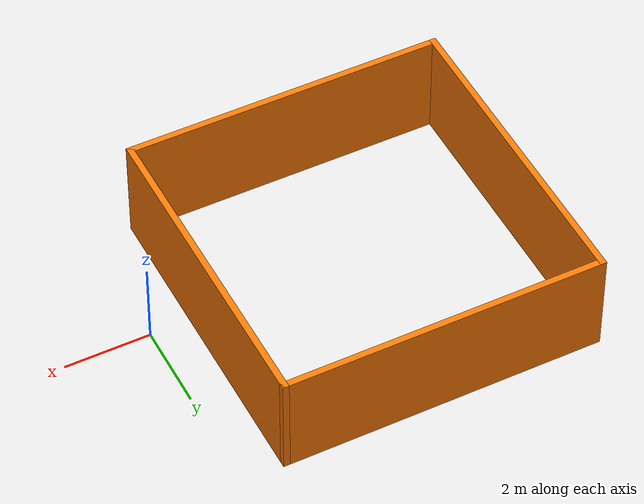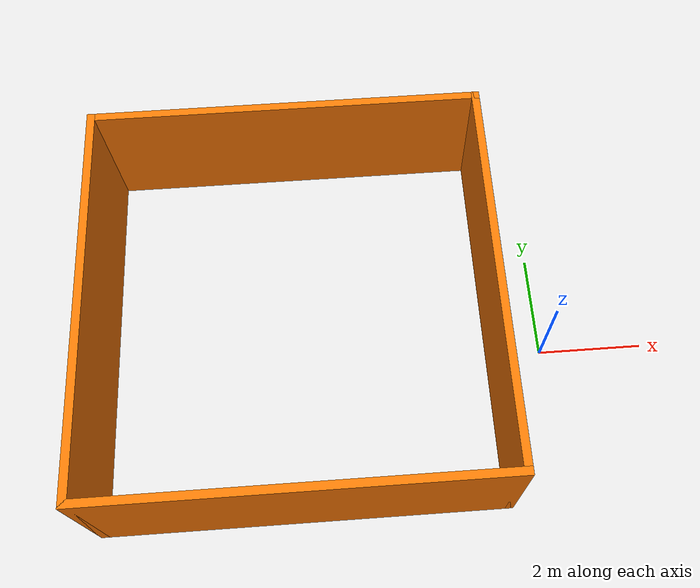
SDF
<?xml version='1.0'?>
<sdf version='1.6'>
  <model name='Myworld2'>
    <pose frame=''>-4.67277 0.752399 0 0 -0 0</pose>
    <link name='Wall_0'>
      <collision name='Wall_0_Collision'>
        <geometry>
          <box>
            <size>7.5 0.15 2.5</size>
          </box>
        </geometry>
        <pose frame=''>0 0 1.25 0 -0 0</pose>
      </collision>
      <visual name='Wall_0_Visual'>
        <pose frame=''>0 0 1.25 0 -0 0</pose>
        <geometry>
          <box>
            <size>7.5 0.15 2.5</size>
          </box>
        </geometry>
        <material>
          <script>
            <uri>file://media/materials/scripts/gazebo.material</uri>
            <name>Gazebo/Grey</name>
          </script>
          <ambient>0.996078 0.47451 0.0196078 1</ambient>
        </material>
        <meta>
          <layer>0</layer>
        </meta>
      </visual>
      <pose frame=''>-3.675 0 0 0 0 -1.5708</pose>
    </link>
    <link name='Wall_1'>
      <collision name='Wall_1_Collision'>
        <geometry>
          <box>
            <size>7.5 0.15 2.5</size>
          </box>
        </geometry>
        <pose frame=''>0 0 1.25 0 -0 0</pose>
      </collision>
      <visual name='Wall_1_Visual'>
        <pose frame=''>0 0 1.25 0 -0 0</pose>
        <geometry>
          <box>
            <size>7.5 0.15 2.5</size>
          </box>
        </geometry>
        <material>
          <script>
            <uri>file://media/materials/scripts/gazebo.material</uri>
            <name>Gazebo/Grey</name>
          </script>
          <ambient>0.996078 0.47451 0.0196078 1</ambient>
        </material>
        <meta>
          <layer>0</layer>
        </meta>
      </visual>
      <pose frame=''>0 -3.675 0 0 -0 0</pose>
    </link>
    <link name='Wall_2'>
      <collision name='Wall_2_Collision'>
        <geometry>
          <box>
            <size>7.5 0.15 2.5</size>
          </box>
        </geometry>
        <pose frame=''>0 0 1.25 0 -0 0</pose>
      </collision>
      <visual name='Wall_2_Visual'>
        <pose frame=''>0 0 1.25 0 -0 0</pose>
        <geometry>
          <box>
            <size>7.5 0.15 2.5</size>
          </box>
        </geometry>
        <material>
          <script>
            <uri>file://media/materials/scripts/gazebo.material</uri>
            <name>Gazebo/Grey</name>
          </script>
          <ambient>0.996078 0.47451 0.0196078 1</ambient>
        </material>
        <meta>
          <layer>0</layer>
        </meta>
      </visual>
      <pose frame=''>3.675 0 0 0 -0 1.5708</pose>
    </link>
    <link name='Wall_3'>
      <collision name='Wall_3_Collision'>
        <geometry>
          <box>
            <size>7.5 0.15 2.5</size>
          </box>
        </geometry>
        <pose frame=''>0 0 1.25 0 -0 0</pose>
      </collision>
      <visual name='Wall_3_Visual'>
        <pose frame=''>0 0 1.25 0 -0 0</pose>
        <geometry>
          <box>
            <size>7.5 0.15 2.5</size>
          </box>
        </geometry>
        <material>
          <script>
            <uri>file://media/materials/scripts/gazebo.material</uri>
            <name>Gazebo/Grey</name>
          </script>
          <ambient>0.996078 0.47451 0.0196078 1</ambient>
        </material>
        <meta>
          <layer>0</layer>
        </meta>
      </visual>
      <pose frame=''>0 3.675 0 0 -0 3.14159</pose>
    </link>
    <static>1</static>
  </model>
</sdf>
